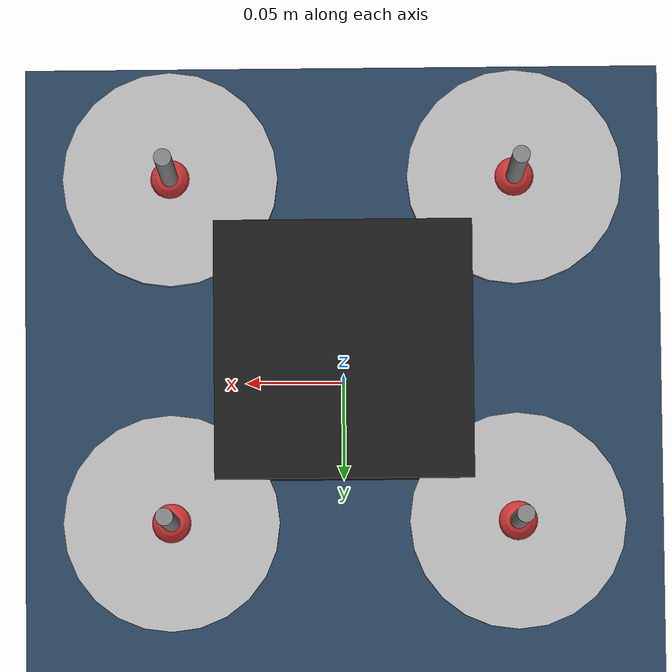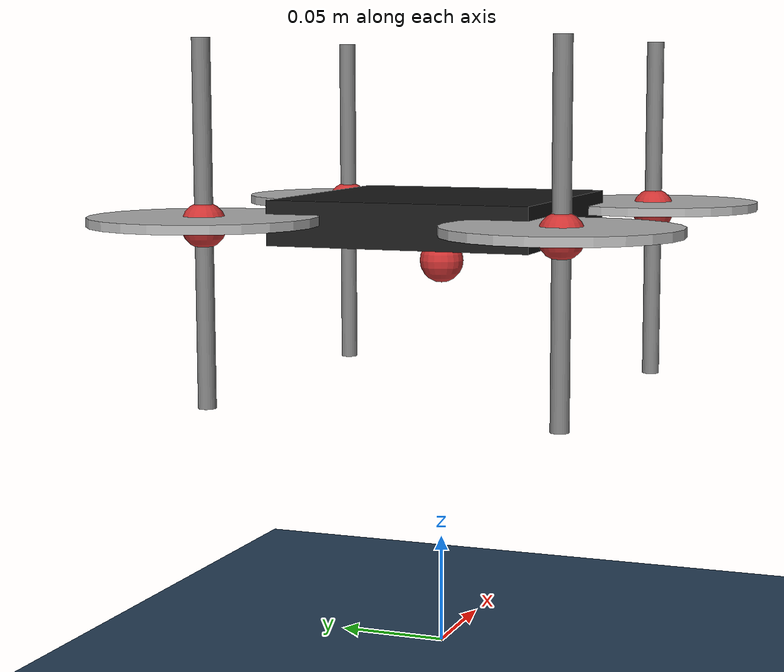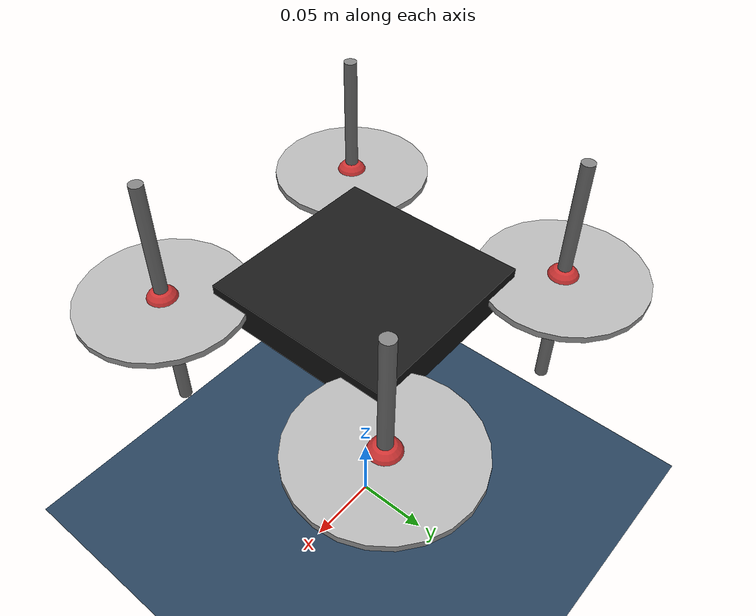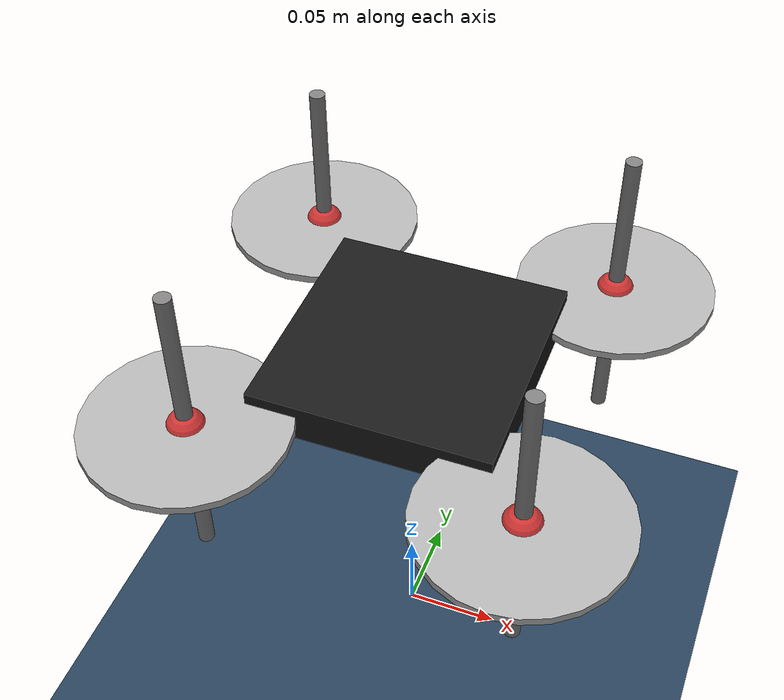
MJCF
<?xml version="1.0" ?>
<mujoco model="heavy_lift_quad">
    <compiler angle="radian" coordinate="local" inertiafromgeom="true"/>

    <option gravity="0 0 -9.81" density="1.293" viscosity="1.85e-5" integrator="RK4"/>

    <default>
        <joint damping="0.005" armature="0.002"/>
        <motor ctrlrange="0 1" ctrllimited="true"/>
        <site size="0.01" rgba="0.8 0.2 0.2 1"/>
    </default>

    <asset>
        <mesh name="arm" file="meshes/arm.stl" scale="2 2 2"/>
        <mesh name="motor" file="meshes/motor.stl" scale="2 2 2"/>
        <material name="body" rgba="0.1 0.1 0.1 1"/>
        <material name="arm" rgba="0.5 0.5 0.5 1"/>
        <material name="rotor" rgba="0.7 0.7 0.7 1"/>
        <texture name="grid" type="2d" builtin="checker" rgb1=".1 .2 .3" rgb2=".2 .3 .4" width="512" height="512"/>
        <material name="grid" texture="grid" texrepeat="1 1" texuniform="true" reflectance=".2"/>
    </asset>

    <worldbody>
        <light diffuse="0.6 0.6 0.6" pos="0 0 3" dir="0 0 -1"/>
        <camera name="fixed" pos="3 0 2" xyaxes="-1 0 0 0 1 0"/>

        <!-- Ground plane with grid texture -->
        <geom name="floor" type="plane" material="grid" pos="0 0 0" size="10 10 0.1"/>

        <body name="quadcopter" pos="0 0 0.2">
            <joint name="root_x" type="slide" axis="1 0 0" pos="0 0 0"/>
            <joint name="root_y" type="slide" axis="0 1 0" pos="0 0 0"/>
            <joint name="root_z" type="slide" axis="0 0 1" pos="0 0 0"/>
            <joint name="root_rotx" type="hinge" axis="1 0 0" pos="0 0 0"/>
            <joint name="root_roty" type="hinge" axis="0 1 0" pos="0 0 0"/>
            <joint name="root_rotz" type="hinge" axis="0 0 1" pos="0 0 0"/>

            <!-- Central body - larger and heavier -->
            <geom type="box" size="0.06 0.06 0.01" material="body" mass="0.5"/>

            <!-- Payload attachment point -->
            <site name="payload" pos="0 0 -0.02"/>

            <!-- Arms - longer and stronger -->
            <body name="arm1" pos="0.08 0.08 0">
                <geom type="cylinder" size="0.004 0.08" pos="0 0 0" quat="0.924 0 0 0.383" material="arm" mass="0.05"/>
                <site name="motor1" pos="0 0 0"/>
                <geom name="prop1" type="cylinder" size="0.05 0.002" pos="0 0 0.002" material="rotor" mass="0.02"/>
            </body>
            <body name="arm2" pos="-0.08 0.08 0">
                <geom type="cylinder" size="0.004 0.08" pos="0 0 0" quat="0.383 0 0 0.924" material="arm" mass="0.05"/>
                <site name="motor2" pos="0 0 0"/>
                <geom name="prop2" type="cylinder" size="0.05 0.002" pos="0 0 0.002" material="rotor" mass="0.02"/>
            </body>
            <body name="arm3" pos="-0.08 -0.08 0">
                <geom type="cylinder" size="0.004 0.08" pos="0 0 0" quat="0.924 0 0 -0.383" material="arm" mass="0.05"/>
                <site name="motor3" pos="0 0 0"/>
                <geom name="prop3" type="cylinder" size="0.05 0.002" pos="0 0 0.002" material="rotor" mass="0.02"/>
            </body>
            <body name="arm4" pos="0.08 -0.08 0">
                <geom type="cylinder" size="0.004 0.08" pos="0 0 0" quat="0.383 0 0 -0.924" material="arm" mass="0.05"/>
                <site name="motor4" pos="0 0 0"/>
                <geom name="prop4" type="cylinder" size="0.05 0.002" pos="0 0 0.002" material="rotor" mass="0.02"/>
            </body>

            <!-- Sensors -->
            <site name="imu" pos="0 0 0"/>
        </body>
    </worldbody>

    <actuator>
        <!-- More powerful motors -->
        <motor name="motor1" site="motor1" gear="0.3 0 0 0 0 1"/>
        <motor name="motor2" site="motor2" gear="0.3 0 0 0 0 -1"/>
        <motor name="motor3" site="motor3" gear="0.3 0 0 0 0 1"/>
        <motor name="motor4" site="motor4" gear="0.3 0 0 0 0 -1"/>
    </actuator>

    <sensor>
        <accelerometer name="accelerometer" site="imu"/>
        <gyro name="gyro" site="imu"/>
        <velocimeter name="velocimeter" site="imu"/>
        <force name="force1" site="motor1"/>
        <force name="force2" site="motor2"/>
        <force name="force3" site="motor3"/>
        <force name="force4" site="motor4"/>
        <torque name="torque1" site="motor1"/>
        <torque name="torque2" site="motor2"/>
        <torque name="torque3" site="motor3"/>
        <torque name="torque4" site="motor4"/>
        <framequat name="orientation" objtype="site" objname="imu"/>
        <force name="payload_force" site="payload"/>
    </sensor>
</mujoco>
